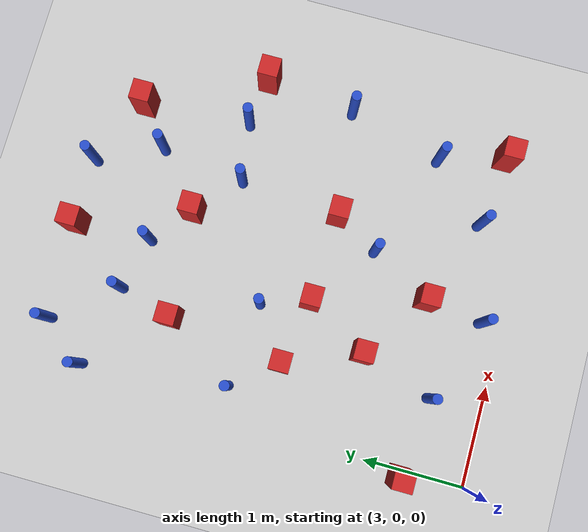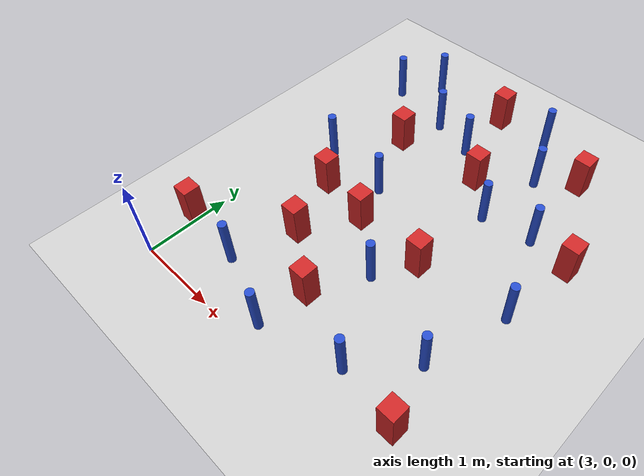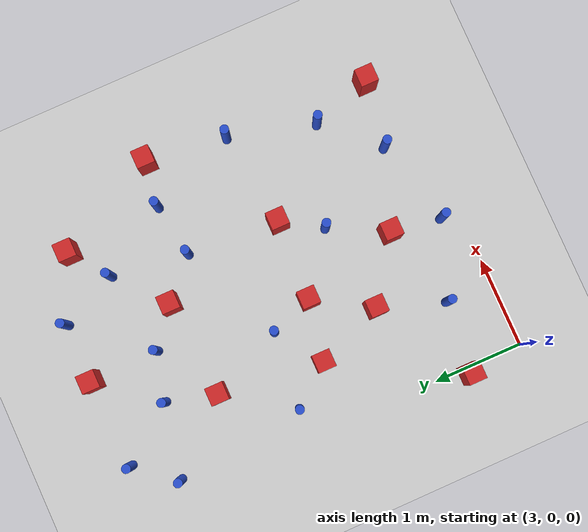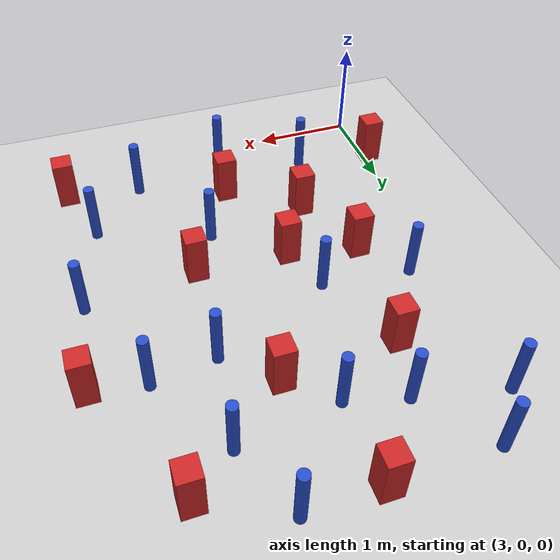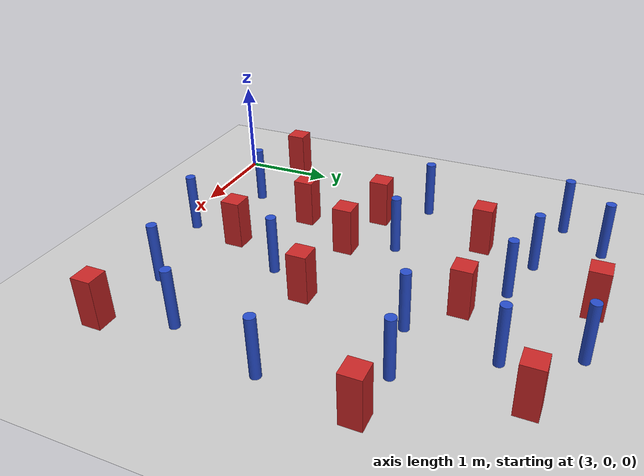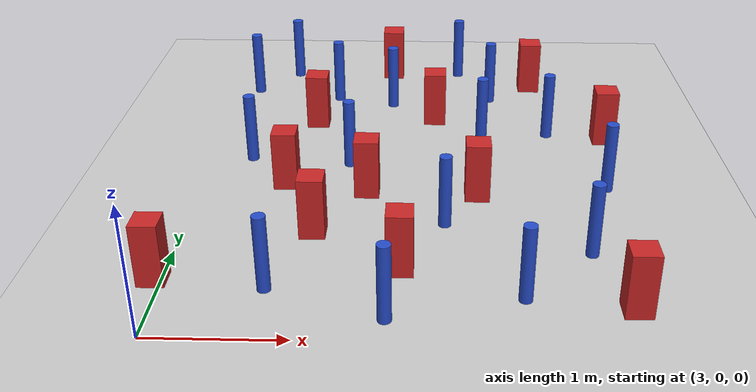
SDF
<sdf version="1.6">
 <world name="default">
  <model name="ground_plane">
   <static>1</static>
   <link name="link">
    <collision name="collision">
     <geometry><plane><normal>0 0 1</normal><size>100 100</size></plane></geometry>
     <surface><friction><ode><mu>100</mu><mu2>50</mu2></ode></friction></surface>
    </collision>
    <visual name="visual">
     <cast_shadows>0</cast_shadows>
     <geometry><plane><normal>0 0 1</normal><size>100 100</size></plane></geometry>
     <material>
      <ambient>1.0 1.0 1.0 1.0</ambient>
      <diffuse>0.8 0.8 0.8 1.0</diffuse>
      <specular>0.01 0.01 0.01 1.000000</specular>
     </material>
    </visual>
   </link>
  </model>
  <model name="pole_obstacle18">
   <static>true</static>
   <pose>3.16765631383 3.91450374751 7.38925637345e-09 -8.47170692798e-08 1.24976764939e-08 -1.74513093025e-07</pose>
   <link name="link">
    <pose>0 0 0.3 0 -0 0</pose>
    <inertial>
     <mass>1</mass>
     <inertia><ixx>0.145833</ixx><ixy>0</ixy><ixz>0</ixz><iyy>0.145833</iyy><iyz>0</iyz><izz>0.125</izz></inertia>
    </inertial>
    <collision name="collision">
     <geometry><cylinder><radius>0.05</radius><length>.6</length></cylinder></geometry>
    </collision>
    <visual name="visual">
     <geometry><cylinder><radius>0.05</radius><length>.6</length></cylinder></geometry>
     <material>
      <script><name>Gazebo/Blue</name><uri>file://media/materials/scripts/gazebo.material</uri></script>
     </material>
    </visual>
   </link>
  </model>
  <model name="pole_obstacle23">
   <static>true</static>
   <pose>5.54783831902 0.467187167467 7.38925637345e-09 -8.47170692799e-08 1.24976765124e-08 -1.74513093015e-07</pose>
   <link name="link">
    <pose>0 0 0.3 0 -0 0</pose>
    <inertial>
     <mass>1</mass>
     <inertia><ixx>0.145833</ixx><ixy>0</ixy><ixz>0</ixz><iyy>0.145833</iyy><iyz>0</iyz><izz>0.125</izz></inertia>
    </inertial>
    <collision name="collision">
     <geometry><cylinder><radius>0.05</radius><length>.6</length></cylinder></geometry>
    </collision>
    <visual name="visual">
     <geometry><cylinder><radius>0.05</radius><length>.6</length></cylinder></geometry>
     <material>
      <script><name>Gazebo/Blue</name><uri>file://media/materials/scripts/gazebo.material</uri></script>
     </material>
    </visual>
   </link>
  </model>
  <model name="pole_obstacle28">
   <static>true</static>
   <pose>3.51916999006 4.34252226868 7.38925637345e-09 -8.47170692798e-08 1.24976765033e-08 -1.74513093019e-07</pose>
   <link name="link">
    <pose>0 0 0.3 0 -0 0</pose>
    <inertial>
     <mass>1</mass>
     <inertia><ixx>0.145833</ixx><ixy>0</ixy><ixz>0</ixz><iyy>0.145833</iyy><iyz>0</iyz><izz>0.125</izz></inertia>
    </inertial>
    <collision name="collision">
     <geometry><cylinder><radius>0.05</radius><length>.6</length></cylinder></geometry>
    </collision>
    <visual name="visual">
     <geometry><cylinder><radius>0.05</radius><length>.6</length></cylinder></geometry>
     <material>
      <script><name>Gazebo/Blue</name><uri>file://media/materials/scripts/gazebo.material</uri></script>
     </material>
    </visual>
   </link>
  </model>
  <model name="pole_obstacle37">
   <static>true</static>
   <pose>5.35044045971 2.87964479079 7.38925637345e-09 -8.47170692798e-08 1.24976764937e-08 -1.74513093023e-07</pose>
   <link name="link">
    <pose>0 0 0.3 0 -0 0</pose>
    <inertial>
     <mass>1</mass>
     <inertia><ixx>0.145833</ixx><ixy>0</ixy><ixz>0</ixz><iyy>0.145833</iyy><iyz>0</iyz><izz>0.125</izz></inertia>
    </inertial>
    <collision name="collision">
     <geometry><cylinder><radius>0.05</radius><length>.6</length></cylinder></geometry>
    </collision>
    <visual name="visual">
     <geometry><cylinder><radius>0.05</radius><length>.6</length></cylinder></geometry>
     <material>
      <script><name>Gazebo/Blue</name><uri>file://media/materials/scripts/gazebo.material</uri></script>
     </material>
    </visual>
   </link>
  </model>
  <model name="pole_obstacle46">
   <static>true</static>
   <pose>4.52830563472 3.60224516928 7.38925637345e-09 -8.47170692798e-08 1.24976764937e-08 -1.74513093023e-07</pose>
   <link name="link">
    <pose>0 0 0.3 0 -0 0</pose>
    <inertial>
     <mass>1</mass>
     <inertia><ixx>0.145833</ixx><ixy>0</ixy><ixz>0</ixz><iyy>0.145833</iyy><iyz>0</iyz><izz>0.125</izz></inertia>
    </inertial>
    <collision name="collision">
     <geometry><cylinder><radius>0.05</radius><length>.6</length></cylinder></geometry>
    </collision>
    <visual name="visual">
     <geometry><cylinder><radius>0.05</radius><length>.6</length></cylinder></geometry>
     <material>
      <script><name>Gazebo/Blue</name><uri>file://media/materials/scripts/gazebo.material</uri></script>
     </material>
    </visual>
   </link>
  </model>
  <model name="pole_obstacle49">
   <static>true</static>
   <pose>6.34472098922 1.98970824934 7.38925637345e-09 -8.471706928e-08 1.24976765177e-08 -1.74513093012e-07</pose>
   <link name="link">
    <pose>0 0 0.3 0 -0 0</pose>
    <inertial>
     <mass>1</mass>
     <inertia><ixx>0.145833</ixx><ixy>0</ixy><ixz>0</ixz><iyy>0.145833</iyy><iyz>0</iyz><izz>0.125</izz></inertia>
    </inertial>
    <collision name="collision">
     <geometry><cylinder><radius>0.05</radius><length>.6</length></cylinder></geometry>
    </collision>
    <visual name="visual">
     <geometry><cylinder><radius>0.05</radius><length>.6</length></cylinder></geometry>
     <material>
      <script><name>Gazebo/Blue</name><uri>file://media/materials/scripts/gazebo.material</uri></script>
     </material>
    </visual>
   </link>
  </model>
  <model name="pole_obstacle50">
   <static>true</static>
   <pose>3.34170360058 2.46092278709 7.38925637345e-09 -8.47170692798e-08 1.24976764939e-08 -1.74513093025e-07</pose>
   <link name="link">
    <pose>0 0 0.3 0 -0 0</pose>
    <inertial>
     <mass>1</mass>
     <inertia><ixx>0.145833</ixx><ixy>0</ixy><ixz>0</ixz><iyy>0.145833</iyy><iyz>0</iyz><izz>0.125</izz></inertia>
    </inertial>
    <collision name="collision">
     <geometry><cylinder><radius>0.05</radius><length>.6</length></cylinder></geometry>
    </collision>
    <visual name="visual">
     <geometry><cylinder><radius>0.05</radius><length>.6</length></cylinder></geometry>
     <material>
      <script><name>Gazebo/Blue</name><uri>file://media/materials/scripts/gazebo.material</uri></script>
     </material>
    </visual>
   </link>
  </model>
  <model name="pole_obstacle52">
   <static>true</static>
   <pose>4.19954542131 2.37302493181 7.38925637345e-09 -8.47170692798e-08 1.24976764937e-08 -1.74513093023e-07</pose>
   <link name="link">
    <pose>0 0 0.3 0 -0 0</pose>
    <inertial>
     <mass>1</mass>
     <inertia><ixx>0.145833</ixx><ixy>0</ixy><ixz>0</ixz><iyy>0.145833</iyy><iyz>0</iyz><izz>0.125</izz></inertia>
    </inertial>
    <collision name="collision">
     <geometry><cylinder><radius>0.05</radius><length>.6</length></cylinder></geometry>
    </collision>
    <visual name="visual">
     <geometry><cylinder><radius>0.05</radius><length>.6</length></cylinder></geometry>
     <material>
      <script><name>Gazebo/Blue</name><uri>file://media/materials/scripts/gazebo.material</uri></script>
     </material>
    </visual>
   </link>
  </model>
  <model name="square_post_obstacle61">
   <static>true</static>
   <pose>4.0006515945 1.27892574412 1.91545236811e-07 -7.35059704564e-06 1.12565212e-07 2.39332434364e-05</pose>
   <link name="link">
    <pose>0 0 0.25 0 -0 0</pose>
    <inertial>
     <mass>100</mass>
     <inertia>
      <ixx>0.166667</ixx>
      <ixy>0</ixy>
      <ixz>0</ixz>
      <iyy>0.166667</iyy>
      <iyz>0</iyz>
      <izz>0.166667</izz>
     </inertia>
    </inertial>
    <collision name="collision"><geometry><box><size>.2 .2 .5</size></box></geometry></collision>
    <visual name="visual">
     <geometry><box><size>.2 .2 .5</size></box></geometry>
     <material>
      <script><name>Gazebo/Red</name><uri>file://media/materials/scripts/gazebo.material</uri></script>
     </material>
    </visual>
   </link>
  </model>
  <model name="pole_obstacle72">
   <static>true</static>
   <pose>5.00497837304 1.41281460481 7.38925637345e-09 -8.471706928e-08 1.24976765134e-08 -1.74513093015e-07</pose>
   <link name="link">
    <pose>0 0 0.3 0 -0 0</pose>
    <inertial>
     <mass>1</mass>
     <inertia><ixx>0.145833</ixx><ixy>0</ixy><ixz>0</ixz><iyy>0.145833</iyy><iyz>0</iyz><izz>0.125</izz></inertia>
    </inertial>
    <collision name="collision">
     <geometry><cylinder><radius>0.05</radius><length>.6</length></cylinder></geometry>
    </collision>
    <visual name="visual">
     <geometry><cylinder><radius>0.05</radius><length>.6</length></cylinder></geometry>
     <material>
      <script><name>Gazebo/Blue</name><uri>file://media/materials/scripts/gazebo.material</uri></script>
     </material>
    </visual>
   </link>
  </model>
  <model name="square_post_obstacle63">
   <static>true</static>
   <pose>6.28418131299 0.368413463434 1.91545236811e-07 -7.35059704564e-06 1.12565212e-07 2.39332434364e-05</pose>
   <link name="link">
    <pose>0 0 0.25 0 -0 0</pose>
    <inertial>
     <mass>100</mass>
     <inertia>
      <ixx>0.166667</ixx>
      <ixy>0</ixy>
      <ixz>0</ixz>
      <iyy>0.166667</iyy>
      <iyz>0</iyz>
      <izz>0.166667</izz>
     </inertia>
    </inertial>
    <collision name="collision"><geometry><box><size>.2 .2 .5</size></box></geometry></collision>
    <visual name="visual">
     <geometry><box><size>.2 .2 .5</size></box></geometry>
     <material>
      <script><name>Gazebo/Red</name><uri>file://media/materials/scripts/gazebo.material</uri></script>
     </material>
    </visual>
   </link>
  </model>
  <model name="pole_obstacle73">
   <static>true</static>
   <pose>5.46847056644 3.73583330618 7.38925637345e-09 -8.47170692798e-08 1.24976764937e-08 -1.74513093023e-07</pose>
   <link name="link">
    <pose>0 0 0.3 0 -0 0</pose>
    <inertial>
     <mass>1</mass>
     <inertia><ixx>0.145833</ixx><ixy>0</ixy><ixz>0</ixz><iyy>0.145833</iyy><iyz>0</iyz><izz>0.125</izz></inertia>
    </inertial>
    <collision name="collision">
     <geometry><cylinder><radius>0.05</radius><length>.6</length></cylinder></geometry>
    </collision>
    <visual name="visual">
     <geometry><cylinder><radius>0.05</radius><length>.6</length></cylinder></geometry>
     <material>
      <script><name>Gazebo/Blue</name><uri>file://media/materials/scripts/gazebo.material</uri></script>
     </material>
    </visual>
   </link>
  </model>
  <model name="square_post_obstacle71">
   <static>true</static>
   <pose>5.27163771688 1.85732565873 1.91545236811e-07 -7.35059704564e-06 1.12565212e-07 2.39332434364e-05</pose>
   <link name="link">
    <pose>0 0 0.25 0 -0 0</pose>
    <inertial>
     <mass>100</mass>
     <inertia>
      <ixx>0.166667</ixx>
      <ixy>0</ixy>
      <ixz>0</ixz>
      <iyy>0.166667</iyy>
      <iyz>0</iyz>
      <izz>0.166667</izz>
     </inertia>
    </inertial>
    <collision name="collision"><geometry><box><size>.2 .2 .5</size></box></geometry></collision>
    <visual name="visual">
     <geometry><box><size>.2 .2 .5</size></box></geometry>
     <material>
      <script><name>Gazebo/Red</name><uri>file://media/materials/scripts/gazebo.material</uri></script>
     </material>
    </visual>
   </link>
  </model>
  <model name="square_post_obstacle80">
   <static>true</static>
   <pose>4.50756013497 4.36634741039 1.91545236811e-07 -7.35059704564e-06 1.12565212e-07 2.39332434364e-05</pose>
   <link name="link">
    <pose>0 0 0.25 0 -0 0</pose>
    <inertial>
     <mass>100</mass>
     <inertia>
      <ixx>0.166667</ixx>
      <ixy>0</ixy>
      <ixz>0</ixz>
      <iyy>0.166667</iyy>
      <iyz>0</iyz>
      <izz>0.166667</izz>
     </inertia>
    </inertial>
    <collision name="collision"><geometry><box><size>.2 .2 .5</size></box></geometry></collision>
    <visual name="visual">
     <geometry><box><size>.2 .2 .5</size></box></geometry>
     <material>
      <script><name>Gazebo/Red</name><uri>file://media/materials/scripts/gazebo.material</uri></script>
     </material>
    </visual>
   </link>
  </model>
  <model name="pole_obstacle106">
   <static>true</static>
   <pose>6.08519039991 1.02775028315 7.38925637345e-09 -8.47170692801e-08 1.24976765139e-08 -1.74513093014e-07</pose>
   <link name="link">
    <pose>0 0 0.3 0 -0 0</pose>
    <inertial>
     <mass>1</mass>
     <inertia><ixx>0.145833</ixx><ixy>0</ixy><ixz>0</ixz><iyy>0.145833</iyy><iyz>0</iyz><izz>0.125</izz></inertia>
    </inertial>
    <collision name="collision">
     <geometry><cylinder><radius>0.05</radius><length>.6</length></cylinder></geometry>
    </collision>
    <visual name="visual">
     <geometry><cylinder><radius>0.05</radius><length>.6</length></cylinder></geometry>
     <material>
      <script><name>Gazebo/Blue</name><uri>file://media/materials/scripts/gazebo.material</uri></script>
     </material>
    </visual>
   </link>
  </model>
  <model name="pole_obstacle112">
   <static>true</static>
   <pose>3.99160633346 3.74183412597 7.38925637345e-09 -8.47170692796e-08 1.24976764765e-08 -1.74513093035e-07</pose>
   <link name="link">
    <pose>0 0 0.3 0 -0 0</pose>
    <inertial>
     <mass>1</mass>
     <inertia><ixx>0.145833</ixx><ixy>0</ixy><ixz>0</ixz><iyy>0.145833</iyy><iyz>0</iyz><izz>0.125</izz></inertia>
    </inertial>
    <collision name="collision">
     <geometry><cylinder><radius>0.05</radius><length>.6</length></cylinder></geometry>
    </collision>
    <visual name="visual">
     <geometry><cylinder><radius>0.05</radius><length>.6</length></cylinder></geometry>
     <material>
      <script><name>Gazebo/Blue</name><uri>file://media/materials/scripts/gazebo.material</uri></script>
     </material>
    </visual>
   </link>
  </model>
  <model name="pole_obstacle122">
   <static>true</static>
   <pose>4.59309335914 0.223079105937 7.38925637345e-09 -8.471706928e-08 1.24976765136e-08 -1.74513093014e-07</pose>
   <link name="link">
    <pose>0 0 0.3 0 -0 0</pose>
    <inertial>
     <mass>1</mass>
     <inertia><ixx>0.145833</ixx><ixy>0</ixy><ixz>0</ixz><iyy>0.145833</iyy><iyz>0</iyz><izz>0.125</izz></inertia>
    </inertial>
    <collision name="collision">
     <geometry><cylinder><radius>0.05</radius><length>.6</length></cylinder></geometry>
    </collision>
    <visual name="visual">
     <geometry><cylinder><radius>0.05</radius><length>.6</length></cylinder></geometry>
     <material>
      <script><name>Gazebo/Blue</name><uri>file://media/materials/scripts/gazebo.material</uri></script>
     </material>
    </visual>
   </link>
  </model>
  <model name="square_post_obstacle131">
   <static>true</static>
   <pose>4.37579584194 1.89778178041 1.91545236811e-07 -7.35059704564e-06 1.12565212e-07 2.39332434364e-05</pose>
   <link name="link">
    <pose>0 0 0.25 0 -0 0</pose>
    <inertial>
     <mass>100</mass>
     <inertia>
      <ixx>0.166667</ixx>
      <ixy>0</ixy>
      <ixz>0</ixz>
      <iyy>0.166667</iyy>
      <iyz>0</iyz>
      <izz>0.166667</izz>
     </inertia>
    </inertial>
    <collision name="collision"><geometry><box><size>.2 .2 .5</size></box></geometry></collision>
    <visual name="visual">
     <geometry><box><size>.2 .2 .5</size></box></geometry>
     <material>
      <script><name>Gazebo/Red</name><uri>file://media/materials/scripts/gazebo.material</uri></script>
     </material>
    </visual>
   </link>
  </model>
  <model name="square_post_obstacle139">
   <static>true</static>
   <pose>5.8768017668 4.04419407934 1.91545236811e-07 -7.35059704564e-06 1.12565212e-07 2.39332434364e-05</pose>
   <link name="link">
    <pose>0 0 0.25 0 -0 0</pose>
    <inertial>
     <mass>100</mass>
     <inertia>
      <ixx>0.166667</ixx>
      <ixy>0</ixy>
      <ixz>0</ixz>
      <iyy>0.166667</iyy>
      <iyz>0</iyz>
      <izz>0.166667</izz>
     </inertia>
    </inertial>
    <collision name="collision"><geometry><box><size>.2 .2 .5</size></box></geometry></collision>
    <visual name="visual">
     <geometry><box><size>.2 .2 .5</size></box></geometry>
     <material>
      <script><name>Gazebo/Red</name><uri>file://media/materials/scripts/gazebo.material</uri></script>
     </material>
    </visual>
   </link>
  </model>
  <model name="pole_obstacle154">
   <static>true</static>
   <pose>5.95091501011 2.97181213031 7.38925637345e-09 -8.47170692798e-08 1.24976764937e-08 -1.74513093023e-07</pose>
   <link name="link">
    <pose>0 0 0.3 0 -0 0</pose>
    <inertial>
     <mass>1</mass>
     <inertia><ixx>0.145833</ixx><ixy>0</ixy><ixz>0</ixz><iyy>0.145833</iyy><iyz>0</iyz><izz>0.125</izz></inertia>
    </inertial>
    <collision name="collision">
     <geometry><cylinder><radius>0.05</radius><length>.6</length></cylinder></geometry>
    </collision>
    <visual name="visual">
     <geometry><cylinder><radius>0.05</radius><length>.6</length></cylinder></geometry>
     <material>
      <script><name>Gazebo/Blue</name><uri>file://media/materials/scripts/gazebo.material</uri></script>
     </material>
    </visual>
   </link>
  </model>
  <model name="square_post_obstacle155">
   <static>true</static>
   <pose>3.70019252356 2.02385575039 1.91545236811e-07 -7.35059704564e-06 1.12565212e-07 2.39332434364e-05</pose>
   <link name="link">
    <pose>0 0 0.25 0 -0 0</pose>
    <inertial>
     <mass>100</mass>
     <inertia>
      <ixx>0.166667</ixx>
      <ixy>0</ixy>
      <ixz>0</ixz>
      <iyy>0.166667</iyy>
      <iyz>0</iyz>
      <izz>0.166667</izz>
     </inertia>
    </inertial>
    <collision name="collision"><geometry><box><size>.2 .2 .5</size></box></geometry></collision>
    <visual name="visual">
     <geometry><box><size>.2 .2 .5</size></box></geometry>
     <material>
      <script><name>Gazebo/Red</name><uri>file://media/materials/scripts/gazebo.material</uri></script>
     </material>
    </visual>
   </link>
  </model>
  <model name="square_post_obstacle170">
   <static>true</static>
   <pose>3.84280091995 3.18569493445 1.91545236811e-07 -7.35059704564e-06 1.12565212e-07 2.39332434364e-05</pose>
   <link name="link">
    <pose>0 0 0.25 0 -0 0</pose>
    <inertial>
     <mass>100</mass>
     <inertia>
      <ixx>0.166667</ixx>
      <ixy>0</ixy>
      <ixz>0</ixz>
      <iyy>0.166667</iyy>
      <iyz>0</iyz>
      <izz>0.166667</izz>
     </inertia>
    </inertial>
    <collision name="collision"><geometry><box><size>.2 .2 .5</size></box></geometry></collision>
    <visual name="visual">
     <geometry><box><size>.2 .2 .5</size></box></geometry>
     <material>
      <script><name>Gazebo/Red</name><uri>file://media/materials/scripts/gazebo.material</uri></script>
     </material>
    </visual>
   </link>
  </model>
  <model name="pole_obstacle174">
   <static>true</static>
   <pose>3.74215431314 0.542656046708 7.38925637345e-09 -8.471706928e-08 1.24976765147e-08 -1.74513093014e-07</pose>
   <link name="link">
    <pose>0 0 0.3 0 -0 0</pose>
    <inertial>
     <mass>1</mass>
     <inertia><ixx>0.145833</ixx><ixy>0</ixy><ixz>0</ixz><iyy>0.145833</iyy><iyz>0</iyz><izz>0.125</izz></inertia>
    </inertial>
    <collision name="collision">
     <geometry><cylinder><radius>0.05</radius><length>.6</length></cylinder></geometry>
    </collision>
    <visual name="visual">
     <geometry><cylinder><radius>0.05</radius><length>.6</length></cylinder></geometry>
     <material>
      <script><name>Gazebo/Blue</name><uri>file://media/materials/scripts/gazebo.material</uri></script>
     </material>
    </visual>
   </link>
  </model>
  <model name="square_post_obstacle188">
   <static>true</static>
   <pose>4.67741234392 0.800651456995 1.91545236811e-07 -7.35059704564e-06 1.12565212e-07 2.39332434364e-05</pose>
   <link name="link">
    <pose>0 0 0.25 0 -0 0</pose>
    <inertial>
     <mass>100</mass>
     <inertia>
      <ixx>0.166667</ixx>
      <ixy>0</ixy>
      <ixz>0</ixz>
      <iyy>0.166667</iyy>
      <iyz>0</iyz>
      <izz>0.166667</izz>
     </inertia>
    </inertial>
    <collision name="collision"><geometry><box><size>.2 .2 .5</size></box></geometry></collision>
    <visual name="visual">
     <geometry><box><size>.2 .2 .5</size></box></geometry>
     <material>
      <script><name>Gazebo/Red</name><uri>file://media/materials/scripts/gazebo.material</uri></script>
     </material>
    </visual>
   </link>
  </model>
  <model name="square_post_obstacle197">
   <static>true</static>
   <pose>2.94426951895 0.639382542887 1.91545236811e-07 -7.35059704564e-06 1.12565212e-07 2.39332434364e-05</pose>
   <link name="link">
    <pose>0 0 0.25 0 -0 0</pose>
    <inertial>
     <mass>100</mass>
     <inertia>
      <ixx>0.166667</ixx>
      <ixy>0</ixy>
      <ixz>0</ixz>
      <iyy>0.166667</iyy>
      <iyz>0</iyz>
      <izz>0.166667</izz>
     </inertia>
    </inertial>
    <collision name="collision"><geometry><box><size>.2 .2 .5</size></box></geometry></collision>
    <visual name="visual">
     <geometry><box><size>.2 .2 .5</size></box></geometry>
     <material>
      <script><name>Gazebo/Red</name><uri>file://media/materials/scripts/gazebo.material</uri></script>
     </material>
    </visual>
   </link>
  </model>
  <model name="pole_obstacle192">
   <static>true</static>
   <pose>5.17664920885 4.37352540403 7.38925637345e-09 -8.47170692796e-08 1.24976764786e-08 -1.74513093032e-07</pose>
   <link name="link">
    <pose>0 0 0.3 0 -0 0</pose>
    <inertial>
     <mass>1</mass>
     <inertia><ixx>0.145833</ixx><ixy>0</ixy><ixz>0</ixz><iyy>0.145833</iyy><iyz>0</iyz><izz>0.125</izz></inertia>
    </inertial>
    <collision name="collision">
     <geometry><cylinder><radius>0.05</radius><length>.6</length></cylinder></geometry>
    </collision>
    <visual name="visual">
     <geometry><cylinder><radius>0.05</radius><length>.6</length></cylinder></geometry>
     <material>
      <script><name>Gazebo/Blue</name><uri>file://media/materials/scripts/gazebo.material</uri></script>
     </material>
    </visual>
   </link>
  </model>
  <model name="square_post_obstacle211">
   <static>true</static>
   <pose>4.92902607224 3.26905552485 1.91545236811e-07 -7.35059704564e-06 1.12565212e-07 2.39332434364e-05</pose>
   <link name="link">
    <pose>0 0 0.25 0 -0 0</pose>
    <inertial>
     <mass>100</mass>
     <inertia>
      <ixx>0.166667</ixx>
      <ixy>0</ixy>
      <ixz>0</ixz>
      <iyy>0.166667</iyy>
      <iyz>0</iyz>
      <izz>0.166667</izz>
     </inertia>
    </inertial>
    <collision name="collision"><geometry><box><size>.2 .2 .5</size></box></geometry></collision>
    <visual name="visual">
     <geometry><box><size>.2 .2 .5</size></box></geometry>
     <material>
      <script><name>Gazebo/Red</name><uri>file://media/materials/scripts/gazebo.material</uri></script>
     </material>
    </visual>
   </link>
  </model>
  <model name="square_post_obstacle217">
   <static>true</static>
   <pose>6.45155879862 2.8948145482 1.91545236811e-07 -7.35059704564e-06 1.12565212e-07 2.39332434364e-05</pose>
   <link name="link">
    <pose>0 0 0.25 0 -0 0</pose>
    <inertial>
     <mass>100</mass>
     <inertia>
      <ixx>0.166667</ixx>
      <ixy>0</ixy>
      <ixz>0</ixz>
      <iyy>0.166667</iyy>
      <iyz>0</iyz>
      <izz>0.166667</izz>
     </inertia>
    </inertial>
    <collision name="collision"><geometry><box><size>.2 .2 .5</size></box></geometry></collision>
    <visual name="visual">
     <geometry><box><size>.2 .2 .5</size></box></geometry>
     <material>
      <script><name>Gazebo/Red</name><uri>file://media/materials/scripts/gazebo.material</uri></script>
     </material>
    </visual>
   </link>
  </model>
 </world>
</sdf>
